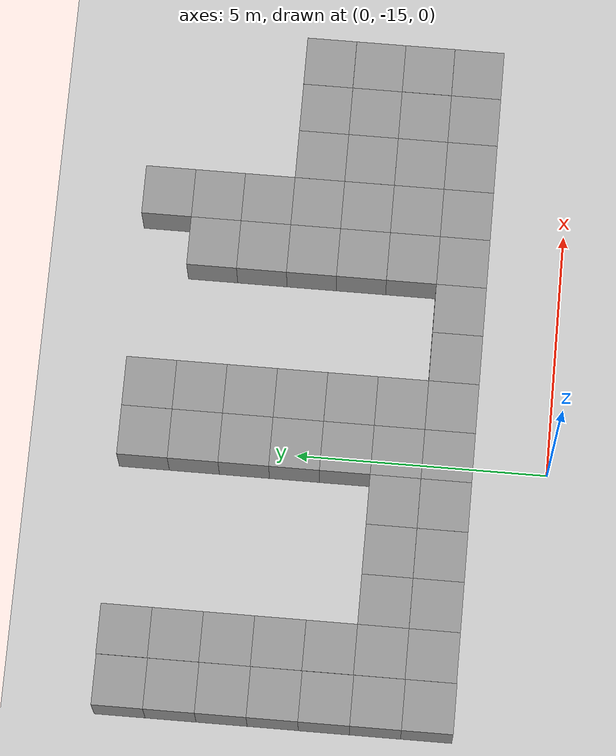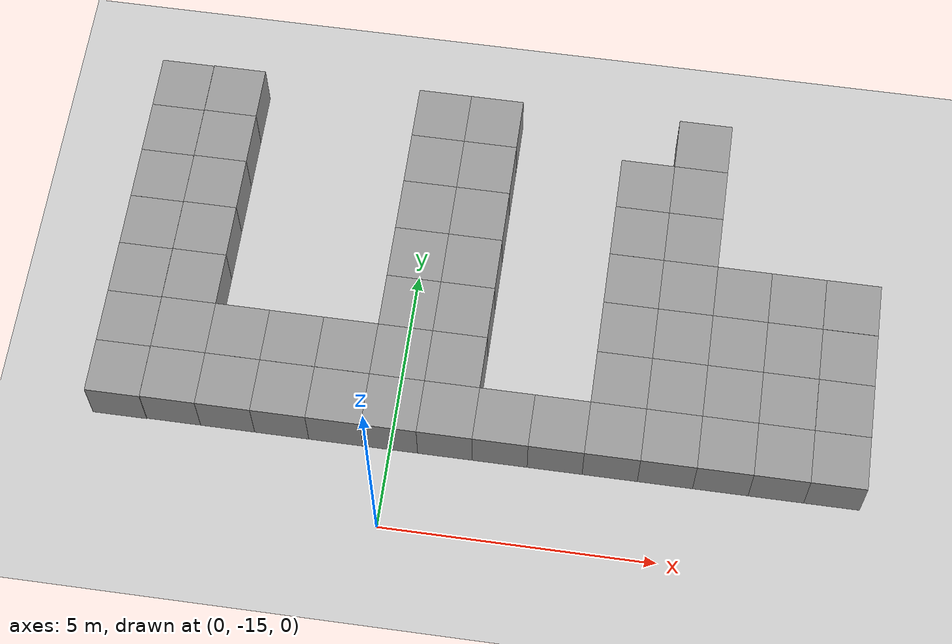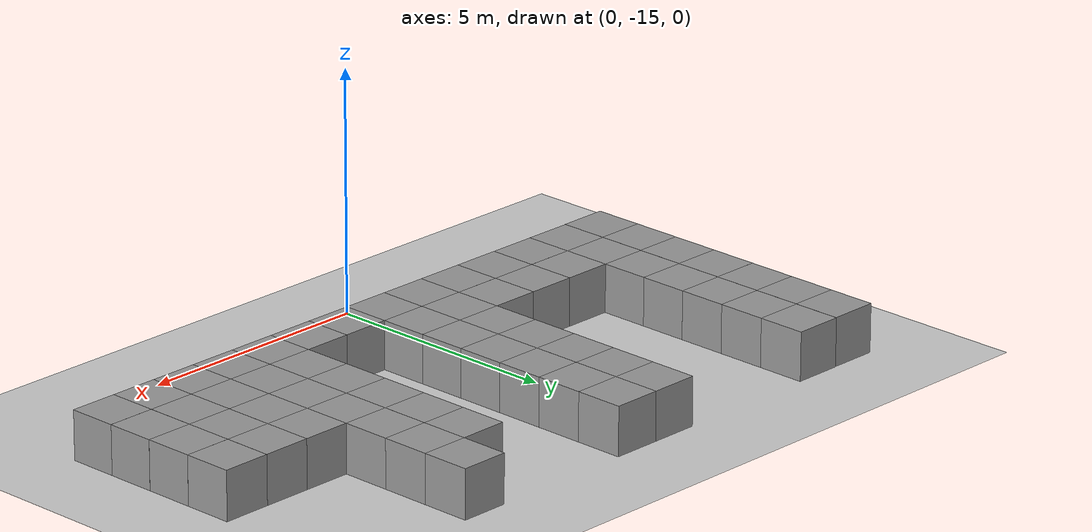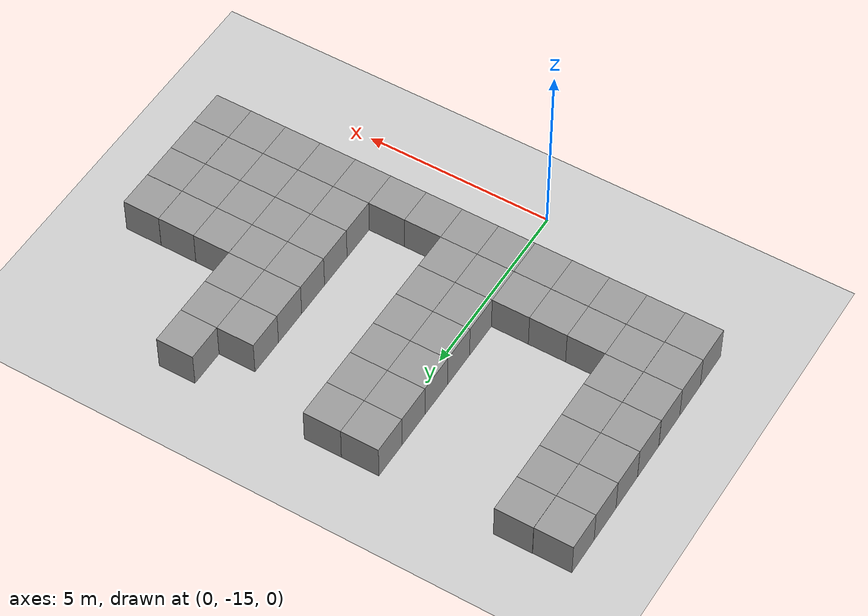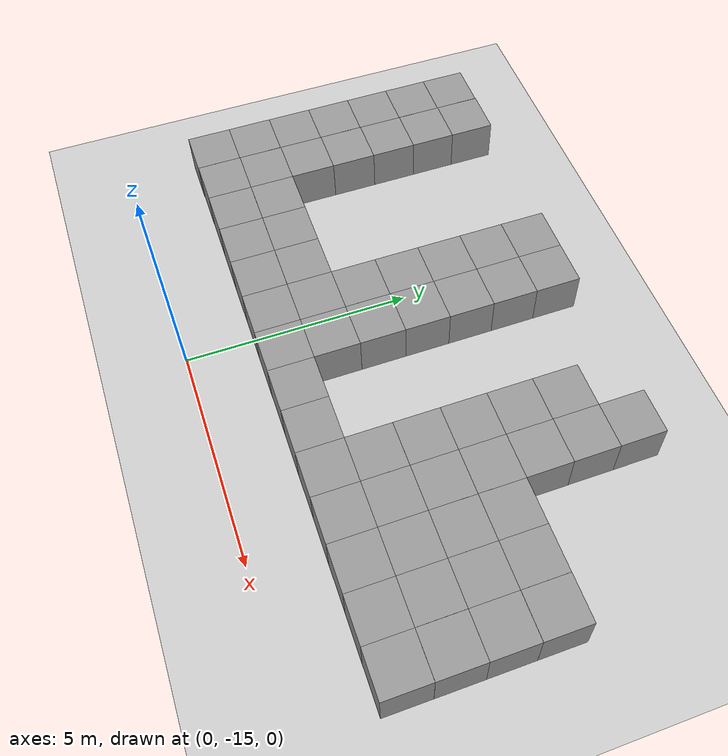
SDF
<sdf version="1.4">
 <world name="default">
  <model name="ground_plane">
   <static>true</static>
   <link name="link">
    <collision name="collision">
     <geometry><plane><normal>0 0 1</normal><size>100 100</size></plane></geometry>
     <surface><friction><ode><mu>100</mu><mu2>50</mu2></ode></friction></surface>
    </collision>
    <visual name="visual">
     <cast_shadows>0</cast_shadows>
     <geometry><plane><normal>0 0 1</normal><size>100 100</size></plane></geometry>
     <material>
      <script><uri>file://media/materials/scripts/gazebo.material</uri><name>Gazebo/Grey</name></script>
     </material>
    </visual>
    <velocity_decay><linear>0</linear><angular>0</angular></velocity_decay>
   </link>
  </model>
  <model name="unit_box_251">
   <pose>-4.00002 -13 0.5 1.61559e-27 -1e-06 -1.2e-05</pose>
   <static>true</static>
   <link name="link">
    <inertial>
     <mass>1</mass>
     <inertia><ixx>1</ixx><ixy>0</ixy><ixz>0</ixz><iyy>1</iyy><iyz>0</iyz><izz>1</izz></inertia>
    </inertial>
    <collision name="collision"><geometry><box><size>1 1 1</size></box></geometry></collision>
    <visual name="visual">
     <geometry><box><size>1 1 1</size></box></geometry>
     <material>
      <script><uri>file://media/materials/scripts/gazebo.material</uri><name>Gazebo/Grey</name></script>
     </material>
    </visual>
    <velocity_decay><linear>0</linear><angular>0</angular></velocity_decay>
   </link>
   <static>true</static>
  </model>
  <model name="unit_box_252">
   <pose>-3.00002 -13 0.5 0 0 -1.1e-05</pose>
   <static>true</static>
   <link name="link">
    <inertial>
     <mass>1</mass>
     <inertia><ixx>1</ixx><ixy>0</ixy><ixz>0</ixz><iyy>1</iyy><iyz>0</iyz><izz>1</izz></inertia>
    </inertial>
    <collision name="collision"><geometry><box><size>1 1 1</size></box></geometry></collision>
    <visual name="visual">
     <geometry><box><size>1 1 1</size></box></geometry>
     <material>
      <script><uri>file://media/materials/scripts/gazebo.material</uri><name>Gazebo/Grey</name></script>
     </material>
    </visual>
    <velocity_decay><linear>0</linear><angular>0</angular></velocity_decay>
   </link>
   <static>true</static>
  </model>
  <model name="unit_box_253">
   <pose>-2.00001 -13 0.5 0 0 -1e-05</pose>
   <static>true</static>
   <link name="link">
    <inertial>
     <mass>1</mass>
     <inertia><ixx>1</ixx><ixy>0</ixy><ixz>0</ixz><iyy>1</iyy><iyz>0</iyz><izz>1</izz></inertia>
    </inertial>
    <collision name="collision"><geometry><box><size>1 1 1</size></box></geometry></collision>
    <visual name="visual">
     <geometry><box><size>1 1 1</size></box></geometry>
     <material>
      <script><uri>file://media/materials/scripts/gazebo.material</uri><name>Gazebo/Grey</name></script>
     </material>
    </visual>
    <velocity_decay><linear>0</linear><angular>0</angular></velocity_decay>
   </link>
   <static>true</static>
  </model>
  <model name="unit_box_254">
   <pose>-1.00001 -13 0.5 0 0 -1e-05</pose>
   <static>true</static>
   <link name="link">
    <inertial>
     <mass>1</mass>
     <inertia><ixx>1</ixx><ixy>0</ixy><ixz>0</ixz><iyy>1</iyy><iyz>0</iyz><izz>1</izz></inertia>
    </inertial>
    <collision name="collision"><geometry><box><size>1 1 1</size></box></geometry></collision>
    <visual name="visual">
     <geometry><box><size>1 1 1</size></box></geometry>
     <material>
      <script><uri>file://media/materials/scripts/gazebo.material</uri><name>Gazebo/Grey</name></script>
     </material>
    </visual>
    <velocity_decay><linear>0</linear><angular>0</angular></velocity_decay>
   </link>
   <static>true</static>
  </model>
  <model name="unit_box_255">
   <pose>-1.2e-05 -12.9999 0.5 0 0 -8e-06</pose>
   <static>true</static>
   <link name="link">
    <inertial>
     <mass>1</mass>
     <inertia><ixx>1</ixx><ixy>0</ixy><ixz>0</ixz><iyy>1</iyy><iyz>0</iyz><izz>1</izz></inertia>
    </inertial>
    <collision name="collision"><geometry><box><size>1 1 1</size></box></geometry></collision>
    <visual name="visual">
     <geometry><box><size>1 1 1</size></box></geometry>
     <material>
      <script><uri>file://media/materials/scripts/gazebo.material</uri><name>Gazebo/Grey</name></script>
     </material>
    </visual>
    <velocity_decay><linear>0</linear><angular>0</angular></velocity_decay>
   </link>
   <static>true</static>
  </model>
  <model name="unit_box_256">
   <pose>0.999991 -12.9999 0.5 0 0 -7e-06</pose>
   <static>true</static>
   <link name="link">
    <inertial>
     <mass>1</mass>
     <inertia><ixx>1</ixx><ixy>0</ixy><ixz>0</ixz><iyy>1</iyy><iyz>0</iyz><izz>1</izz></inertia>
    </inertial>
    <collision name="collision"><geometry><box><size>1 1 1</size></box></geometry></collision>
    <visual name="visual">
     <geometry><box><size>1 1 1</size></box></geometry>
     <material>
      <script><uri>file://media/materials/scripts/gazebo.material</uri><name>Gazebo/Grey</name></script>
     </material>
    </visual>
    <velocity_decay><linear>0</linear><angular>0</angular></velocity_decay>
   </link>
   <static>true</static>
  </model>
  <model name="unit_box_257">
   <pose>1.99999 -12.9999 0.5 0 0 -7e-06</pose>
   <static>true</static>
   <link name="link">
    <inertial>
     <mass>1</mass>
     <inertia><ixx>1</ixx><ixy>0</ixy><ixz>0</ixz><iyy>1</iyy><iyz>0</iyz><izz>1</izz></inertia>
    </inertial>
    <collision name="collision"><geometry><box><size>1 1 1</size></box></geometry></collision>
    <visual name="visual">
     <geometry><box><size>1 1 1</size></box></geometry>
     <material>
      <script><uri>file://media/materials/scripts/gazebo.material</uri><name>Gazebo/Grey</name></script>
     </material>
    </visual>
    <velocity_decay><linear>0</linear><angular>0</angular></velocity_decay>
   </link>
   <static>true</static>
  </model>
  <model name="unit_box_258">
   <pose>2.99999 -12.9999 0.5 0 0 -5e-06</pose>
   <static>true</static>
   <link name="link">
    <inertial>
     <mass>1</mass>
     <inertia><ixx>1</ixx><ixy>0</ixy><ixz>0</ixz><iyy>1</iyy><iyz>0</iyz><izz>1</izz></inertia>
    </inertial>
    <collision name="collision"><geometry><box><size>1 1 1</size></box></geometry></collision>
    <visual name="visual">
     <geometry><box><size>1 1 1</size></box></geometry>
     <material>
      <script><uri>file://media/materials/scripts/gazebo.material</uri><name>Gazebo/Grey</name></script>
     </material>
    </visual>
    <velocity_decay><linear>0</linear><angular>0</angular></velocity_decay>
   </link>
   <static>true</static>
  </model>
  <model name="unit_box_259">
   <pose>4 -13 0.5 0 0 -5e-06</pose>
   <static>true</static>
   <link name="link">
    <inertial>
     <mass>1</mass>
     <inertia><ixx>1</ixx><ixy>0</ixy><ixz>0</ixz><iyy>1</iyy><iyz>0</iyz><izz>1</izz></inertia>
    </inertial>
    <collision name="collision"><geometry><box><size>1 1 1</size></box></geometry></collision>
    <visual name="visual">
     <geometry><box><size>1 1 1</size></box></geometry>
     <material>
      <script><uri>file://media/materials/scripts/gazebo.material</uri><name>Gazebo/Grey</name></script>
     </material>
    </visual>
    <velocity_decay><linear>0</linear><angular>0</angular></velocity_decay>
   </link>
   <static>true</static>
  </model>
  <model name="unit_box_260">
   <pose>5 -12.9999 0.499989 -3e-06 -0 -7e-06</pose>
   <static>true</static>
   <link name="link">
    <inertial>
     <mass>1</mass>
     <inertia><ixx>1</ixx><ixy>0</ixy><ixz>0</ixz><iyy>1</iyy><iyz>0</iyz><izz>1</izz></inertia>
    </inertial>
    <collision name="collision"><geometry><box><size>1 1 1</size></box></geometry></collision>
    <visual name="visual">
     <geometry><box><size>1 1 1</size></box></geometry>
     <material>
      <script><uri>file://media/materials/scripts/gazebo.material</uri><name>Gazebo/Grey</name></script>
     </material>
    </visual>
    <velocity_decay><linear>0</linear><angular>0</angular></velocity_decay>
   </link>
   <static>true</static>
  </model>
  <model name="unit_box_261">
   <pose>6 -13 0.500001 2e-06 3.23117e-27 -7e-06</pose>
   <static>true</static>
   <link name="link">
    <inertial>
     <mass>1</mass>
     <inertia><ixx>1</ixx><ixy>0</ixy><ixz>0</ixz><iyy>1</iyy><iyz>0</iyz><izz>1</izz></inertia>
    </inertial>
    <collision name="collision"><geometry><box><size>1 1 1</size></box></geometry></collision>
    <visual name="visual">
     <geometry><box><size>1 1 1</size></box></geometry>
     <material>
      <script><uri>file://media/materials/scripts/gazebo.material</uri><name>Gazebo/Grey</name></script>
     </material>
    </visual>
    <velocity_decay><linear>0</linear><angular>0</angular></velocity_decay>
   </link>
   <static>true</static>
  </model>
  <model name="unit_box_262">
   <pose>7 -13 0.5 0 0 -1.1e-05</pose>
   <static>true</static>
   <link name="link">
    <inertial>
     <mass>1</mass>
     <inertia><ixx>1</ixx><ixy>0</ixy><ixz>0</ixz><iyy>1</iyy><iyz>0</iyz><izz>1</izz></inertia>
    </inertial>
    <collision name="collision"><geometry><box><size>1 1 1</size></box></geometry></collision>
    <visual name="visual">
     <geometry><box><size>1 1 1</size></box></geometry>
     <material>
      <script><uri>file://media/materials/scripts/gazebo.material</uri><name>Gazebo/Grey</name></script>
     </material>
    </visual>
    <velocity_decay><linear>0</linear><angular>0</angular></velocity_decay>
   </link>
   <static>true</static>
  </model>
  <model name="unit_box_263">
   <pose>8 -13 0.499998 3e-06 -0 -1.1e-05</pose>
   <static>true</static>
   <link name="link">
    <inertial>
     <mass>1</mass>
     <inertia><ixx>1</ixx><ixy>0</ixy><ixz>0</ixz><iyy>1</iyy><iyz>0</iyz><izz>1</izz></inertia>
    </inertial>
    <collision name="collision"><geometry><box><size>1 1 1</size></box></geometry></collision>
    <visual name="visual">
     <geometry><box><size>1 1 1</size></box></geometry>
     <material>
      <script><uri>file://media/materials/scripts/gazebo.material</uri><name>Gazebo/Grey</name></script>
     </material>
    </visual>
    <velocity_decay><linear>0</linear><angular>0</angular></velocity_decay>
   </link>
   <static>true</static>
  </model>
  <model name="unit_box_3_0">
   <pose>-5.00136 -7.00916 0.5 0 -0 0.000356</pose>
   <link name="link">
    <inertial>
     <mass>1</mass>
     <inertia><ixx>1</ixx><ixy>0</ixy><ixz>0</ixz><iyy>1</iyy><iyz>0</iyz><izz>1</izz></inertia>
    </inertial>
    <collision name="collision"><geometry><box><size>1 1 1</size></box></geometry></collision>
    <visual name="visual">
     <geometry><box><size>1 1 1</size></box></geometry>
     <material>
      <script><uri>file://media/materials/scripts/gazebo.material</uri><name>Gazebo/Grey</name></script>
     </material>
    </visual>
    <velocity_decay><linear>0</linear><angular>0</angular></velocity_decay>
   </link>
   <static>true</static>
  </model>
  <model name="unit_box_4_0">
   <pose>-5.00078 -8.00916 0.5 0 -0 0.000358</pose>
   <link name="link">
    <inertial>
     <mass>1</mass>
     <inertia><ixx>1</ixx><ixy>0</ixy><ixz>0</ixz><iyy>1</iyy><iyz>0</iyz><izz>1</izz></inertia>
    </inertial>
    <collision name="collision"><geometry><box><size>1 1 1</size></box></geometry></collision>
    <visual name="visual">
     <geometry><box><size>1 1 1</size></box></geometry>
     <material>
      <script><uri>file://media/materials/scripts/gazebo.material</uri><name>Gazebo/Grey</name></script>
     </material>
    </visual>
    <velocity_decay><linear>0</linear><angular>0</angular></velocity_decay>
   </link>
   <static>true</static>
  </model>
  <model name="unit_box_5_0">
   <pose>-5.00004 -9.00916 0.5 0 -0 0.000358</pose>
   <link name="link">
    <inertial>
     <mass>1</mass>
     <inertia><ixx>1</ixx><ixy>0</ixy><ixz>0</ixz><iyy>1</iyy><iyz>0</iyz><izz>1</izz></inertia>
    </inertial>
    <collision name="collision"><geometry><box><size>1 1 1</size></box></geometry></collision>
    <visual name="visual">
     <geometry><box><size>1 1 1</size></box></geometry>
     <material>
      <script><uri>file://media/materials/scripts/gazebo.material</uri><name>Gazebo/Grey</name></script>
     </material>
    </visual>
    <velocity_decay><linear>0</linear><angular>0</angular></velocity_decay>
   </link>
   <static>true</static>
  </model>
  <model name="unit_box_6_0">
   <pose>-5.00024 -10.0092 0.5 0 -0 0.000433</pose>
   <link name="link">
    <inertial>
     <mass>1</mass>
     <inertia><ixx>1</ixx><ixy>0</ixy><ixz>0</ixz><iyy>1</iyy><iyz>0</iyz><izz>1</izz></inertia>
    </inertial>
    <collision name="collision"><geometry><box><size>1 1 1</size></box></geometry></collision>
    <visual name="visual">
     <geometry><box><size>1 1 1</size></box></geometry>
     <material>
      <script><uri>file://media/materials/scripts/gazebo.material</uri><name>Gazebo/Grey</name></script>
     </material>
    </visual>
    <velocity_decay><linear>0</linear><angular>0</angular></velocity_decay>
   </link>
   <static>true</static>
  </model>
  <model name="unit_box_7_0">
   <pose>-5.00172 -11.0092 0.5 0 -0 0.000435</pose>
   <link name="link">
    <inertial>
     <mass>1</mass>
     <inertia><ixx>1</ixx><ixy>0</ixy><ixz>0</ixz><iyy>1</iyy><iyz>0</iyz><izz>1</izz></inertia>
    </inertial>
    <collision name="collision"><geometry><box><size>1 1 1</size></box></geometry></collision>
    <visual name="visual">
     <geometry><box><size>1 1 1</size></box></geometry>
     <material>
      <script><uri>file://media/materials/scripts/gazebo.material</uri><name>Gazebo/Grey</name></script>
     </material>
    </visual>
    <velocity_decay><linear>0</linear><angular>0</angular></velocity_decay>
   </link>
   <static>true</static>
  </model>
  <model name="unit_box_8_0">
   <pose>-5.00096 -12.0092 0.5 0 -0 0.000437</pose>
   <link name="link">
    <inertial>
     <mass>1</mass>
     <inertia><ixx>1</ixx><ixy>0</ixy><ixz>0</ixz><iyy>1</iyy><iyz>0</iyz><izz>1</izz></inertia>
    </inertial>
    <collision name="collision"><geometry><box><size>1 1 1</size></box></geometry></collision>
    <visual name="visual">
     <geometry><box><size>1 1 1</size></box></geometry>
     <material>
      <script><uri>file://media/materials/scripts/gazebo.material</uri><name>Gazebo/Grey</name></script>
     </material>
    </visual>
    <velocity_decay><linear>0</linear><angular>0</angular></velocity_decay>
   </link>
   <static>true</static>
  </model>
  <model name="unit_box_9_0">
   <pose>-5.00026 -13.0092 0.5 0 -0 0.00045</pose>
   <link name="link">
    <inertial>
     <mass>1</mass>
     <inertia><ixx>1</ixx><ixy>0</ixy><ixz>0</ixz><iyy>1</iyy><iyz>0</iyz><izz>1</izz></inertia>
    </inertial>
    <collision name="collision"><geometry><box><size>1 1 1</size></box></geometry></collision>
    <visual name="visual">
     <geometry><box><size>1 1 1</size></box></geometry>
     <material>
      <script><uri>file://media/materials/scripts/gazebo.material</uri><name>Gazebo/Grey</name></script>
     </material>
    </visual>
    <velocity_decay><linear>0</linear><angular>0</angular></velocity_decay>
   </link>
   <static>true</static>
  </model>
  <model name="unit_box_29_0">
   <pose>-4.00004 -12 0.5 0 -0 -4.6e-05</pose>
   <link name="link">
    <inertial>
     <mass>1</mass>
     <inertia><ixx>1</ixx><ixy>0</ixy><ixz>0</ixz><iyy>1</iyy><iyz>0</iyz><izz>1</izz></inertia>
    </inertial>
    <collision name="collision"><geometry><box><size>1 1 1</size></box></geometry></collision>
    <visual name="visual">
     <geometry><box><size>1 1 1</size></box></geometry>
     <material>
      <script><uri>file://media/materials/scripts/gazebo.material</uri><name>Gazebo/Grey</name></script>
     </material>
    </visual>
    <velocity_decay><linear>0</linear><angular>0</angular></velocity_decay>
   </link>
   <static>true</static>
  </model>
  <model name="unit_box_30_0">
   <pose>-3.00003 -11.9996 0.5 0 -0 -3.6e-05</pose>
   <link name="link">
    <inertial>
     <mass>1</mass>
     <inertia><ixx>1</ixx><ixy>0</ixy><ixz>0</ixz><iyy>1</iyy><iyz>0</iyz><izz>1</izz></inertia>
    </inertial>
    <collision name="collision"><geometry><box><size>1 1 1</size></box></geometry></collision>
    <visual name="visual">
     <geometry><box><size>1 1 1</size></box></geometry>
     <material>
      <script><uri>file://media/materials/scripts/gazebo.material</uri><name>Gazebo/Grey</name></script>
     </material>
    </visual>
    <velocity_decay><linear>0</linear><angular>0</angular></velocity_decay>
   </link>
   <static>true</static>
  </model>
  <model name="unit_box_31_0">
   <pose>-2.00003 -11.9996 0.5 0 0 -3.2e-05</pose>
   <link name="link">
    <inertial>
     <mass>1</mass>
     <inertia><ixx>1</ixx><ixy>0</ixy><ixz>0</ixz><iyy>1</iyy><iyz>0</iyz><izz>1</izz></inertia>
    </inertial>
    <collision name="collision"><geometry><box><size>1 1 1</size></box></geometry></collision>
    <visual name="visual">
     <geometry><box><size>1 1 1</size></box></geometry>
     <material>
      <script><uri>file://media/materials/scripts/gazebo.material</uri><name>Gazebo/Grey</name></script>
     </material>
    </visual>
    <velocity_decay><linear>0</linear><angular>0</angular></velocity_decay>
   </link>
   <static>true</static>
  </model>
  <model name="unit_box_32_0">
   <pose>-1.00003 -11.9996 0.5 0 0 -2.6e-05</pose>
   <link name="link">
    <inertial>
     <mass>1</mass>
     <inertia><ixx>1</ixx><ixy>0</ixy><ixz>0</ixz><iyy>1</iyy><iyz>0</iyz><izz>1</izz></inertia>
    </inertial>
    <collision name="collision"><geometry><box><size>1 1 1</size></box></geometry></collision>
    <visual name="visual">
     <geometry><box><size>1 1 1</size></box></geometry>
     <material>
      <script><uri>file://media/materials/scripts/gazebo.material</uri><name>Gazebo/Grey</name></script>
     </material>
    </visual>
    <velocity_decay><linear>0</linear><angular>0</angular></velocity_decay>
   </link>
   <static>true</static>
  </model>
  <model name="unit_box_33_0">
   <pose>-5e-06 -11.9999 0.5 -0 -0 -8e-06</pose>
   <link name="link">
    <inertial>
     <mass>1</mass>
     <inertia><ixx>1</ixx><ixy>0</ixy><ixz>0</ixz><iyy>1</iyy><iyz>0</iyz><izz>1</izz></inertia>
    </inertial>
    <collision name="collision"><geometry><box><size>1 1 1</size></box></geometry></collision>
    <visual name="visual">
     <geometry><box><size>1 1 1</size></box></geometry>
     <material>
      <script><uri>file://media/materials/scripts/gazebo.material</uri><name>Gazebo/Grey</name></script>
     </material>
    </visual>
    <velocity_decay><linear>0</linear><angular>0</angular></velocity_decay>
   </link>
   <static>true</static>
  </model>
  <model name="unit_box_34_0">
   <pose>0.999998 -11.9999 0.5 0 -0 -8e-06</pose>
   <link name="link">
    <inertial>
     <mass>1</mass>
     <inertia><ixx>1</ixx><ixy>0</ixy><ixz>0</ixz><iyy>1</iyy><iyz>0</iyz><izz>1</izz></inertia>
    </inertial>
    <collision name="collision"><geometry><box><size>1 1 1</size></box></geometry></collision>
    <visual name="visual">
     <geometry><box><size>1 1 1</size></box></geometry>
     <material>
      <script><uri>file://media/materials/scripts/gazebo.material</uri><name>Gazebo/Grey</name></script>
     </material>
    </visual>
    <velocity_decay><linear>0</linear><angular>0</angular></velocity_decay>
   </link>
   <static>true</static>
  </model>
  <model name="unit_box_35_0">
   <pose>3.99999 -12 0.5 0 -0 7e-06</pose>
   <link name="link">
    <inertial>
     <mass>1</mass>
     <inertia><ixx>1</ixx><ixy>0</ixy><ixz>0</ixz><iyy>1</iyy><iyz>0</iyz><izz>1</izz></inertia>
    </inertial>
    <collision name="collision"><geometry><box><size>1 1 1</size></box></geometry></collision>
    <visual name="visual">
     <geometry><box><size>1 1 1</size></box></geometry>
     <material>
      <script><uri>file://media/materials/scripts/gazebo.material</uri><name>Gazebo/Grey</name></script>
     </material>
    </visual>
    <velocity_decay><linear>0</linear><angular>0</angular></velocity_decay>
   </link>
   <static>true</static>
  </model>
  <model name="unit_box_36_0">
   <pose>5 -11.9999 0.5 0 0 -7e-06</pose>
   <link name="link">
    <inertial>
     <mass>1</mass>
     <inertia><ixx>1</ixx><ixy>0</ixy><ixz>0</ixz><iyy>1</iyy><iyz>0</iyz><izz>1</izz></inertia>
    </inertial>
    <collision name="collision"><geometry><box><size>1 1 1</size></box></geometry></collision>
    <visual name="visual">
     <geometry><box><size>1 1 1</size></box></geometry>
     <material>
      <script><uri>file://media/materials/scripts/gazebo.material</uri><name>Gazebo/Grey</name></script>
     </material>
    </visual>
    <velocity_decay><linear>0</linear><angular>0</angular></velocity_decay>
   </link>
   <static>true</static>
  </model>
  <model name="unit_box_37_0">
   <pose>6.00003 -12 0.5 -0 -0 -3e-05</pose>
   <link name="link">
    <inertial>
     <mass>1</mass>
     <inertia><ixx>1</ixx><ixy>0</ixy><ixz>0</ixz><iyy>1</iyy><iyz>0</iyz><izz>1</izz></inertia>
    </inertial>
    <collision name="collision"><geometry><box><size>1 1 1</size></box></geometry></collision>
    <visual name="visual">
     <geometry><box><size>1 1 1</size></box></geometry>
     <material>
      <script><uri>file://media/materials/scripts/gazebo.material</uri><name>Gazebo/Grey</name></script>
     </material>
    </visual>
    <velocity_decay><linear>0</linear><angular>0</angular></velocity_decay>
   </link>
   <static>true</static>
  </model>
  <model name="unit_box_38_0">
   <pose>7.00003 -12 0.5 0 0 -3e-05</pose>
   <link name="link">
    <inertial>
     <mass>1</mass>
     <inertia><ixx>1</ixx><ixy>0</ixy><ixz>0</ixz><iyy>1</iyy><iyz>0</iyz><izz>1</izz></inertia>
    </inertial>
    <collision name="collision"><geometry><box><size>1 1 1</size></box></geometry></collision>
    <visual name="visual">
     <geometry><box><size>1 1 1</size></box></geometry>
     <material>
      <script><uri>file://media/materials/scripts/gazebo.material</uri><name>Gazebo/Grey</name></script>
     </material>
    </visual>
    <velocity_decay><linear>0</linear><angular>0</angular></velocity_decay>
   </link>
   <static>true</static>
  </model>
  <model name="unit_box_39_0">
   <pose>8.00115 -11.9995 0.5 0 -0 0.000206</pose>
   <link name="link">
    <inertial>
     <mass>1</mass>
     <inertia><ixx>1</ixx><ixy>0</ixy><ixz>0</ixz><iyy>1</iyy><iyz>0</iyz><izz>1</izz></inertia>
    </inertial>
    <collision name="collision"><geometry><box><size>1 1 1</size></box></geometry></collision>
    <visual name="visual">
     <geometry><box><size>1 1 1</size></box></geometry>
     <material>
      <script><uri>file://media/materials/scripts/gazebo.material</uri><name>Gazebo/Grey</name></script>
     </material>
    </visual>
    <velocity_decay><linear>0</linear><angular>0</angular></velocity_decay>
   </link>
   <static>true</static>
  </model>
  <model name="unit_box_44_0">
   <pose>-3.99998 -11 0.5 0 0 -7.9e-05</pose>
   <link name="link">
    <inertial>
     <mass>1</mass>
     <inertia><ixx>1</ixx><ixy>0</ixy><ixz>0</ixz><iyy>1</iyy><iyz>0</iyz><izz>1</izz></inertia>
    </inertial>
    <collision name="collision"><geometry><box><size>1 1 1</size></box></geometry></collision>
    <visual name="visual">
     <geometry><box><size>1 1 1</size></box></geometry>
     <material>
      <script><uri>file://media/materials/scripts/gazebo.material</uri><name>Gazebo/Grey</name></script>
     </material>
    </visual>
    <velocity_decay><linear>0</linear><angular>0</angular></velocity_decay>
   </link>
   <static>true</static>
  </model>
  <model name="unit_box_45_0">
   <pose>-3.99957 -9.99996 0.5 -0 -0 -7.8e-05</pose>
   <link name="link">
    <inertial>
     <mass>1</mass>
     <inertia><ixx>1</ixx><ixy>0</ixy><ixz>0</ixz><iyy>1</iyy><iyz>0</iyz><izz>1</izz></inertia>
    </inertial>
    <collision name="collision"><geometry><box><size>1 1 1</size></box></geometry></collision>
    <visual name="visual">
     <geometry><box><size>1 1 1</size></box></geometry>
     <material>
      <script><uri>file://media/materials/scripts/gazebo.material</uri><name>Gazebo/Grey</name></script>
     </material>
    </visual>
    <velocity_decay><linear>0</linear><angular>0</angular></velocity_decay>
   </link>
   <static>true</static>
  </model>
  <model name="unit_box_46_0">
   <pose>-3.99972 -8.99996 0.5 0 -0 -7.9e-05</pose>
   <link name="link">
    <inertial>
     <mass>1</mass>
     <inertia><ixx>1</ixx><ixy>0</ixy><ixz>0</ixz><iyy>1</iyy><iyz>0</iyz><izz>1</izz></inertia>
    </inertial>
    <collision name="collision"><geometry><box><size>1 1 1</size></box></geometry></collision>
    <visual name="visual">
     <geometry><box><size>1 1 1</size></box></geometry>
     <material>
      <script><uri>file://media/materials/scripts/gazebo.material</uri><name>Gazebo/Grey</name></script>
     </material>
    </visual>
    <velocity_decay><linear>0</linear><angular>0</angular></velocity_decay>
   </link>
   <static>true</static>
  </model>
  <model name="unit_box_47_0">
   <pose>-3.99969 -7.99996 0.5 -0 -0 -7.9e-05</pose>
   <link name="link">
    <inertial>
     <mass>1</mass>
     <inertia><ixx>1</ixx><ixy>0</ixy><ixz>0</ixz><iyy>1</iyy><iyz>0</iyz><izz>1</izz></inertia>
    </inertial>
    <collision name="collision"><geometry><box><size>1 1 1</size></box></geometry></collision>
    <visual name="visual">
     <geometry><box><size>1 1 1</size></box></geometry>
     <material>
      <script><uri>file://media/materials/scripts/gazebo.material</uri><name>Gazebo/Grey</name></script>
     </material>
    </visual>
    <velocity_decay><linear>0</linear><angular>0</angular></velocity_decay>
   </link>
   <static>true</static>
  </model>
  <model name="unit_box_48_0">
   <pose>-3.99926 -6.99996 0.5 0 0 -7.9e-05</pose>
   <link name="link">
    <inertial>
     <mass>1</mass>
     <inertia><ixx>1</ixx><ixy>0</ixy><ixz>0</ixz><iyy>1</iyy><iyz>0</iyz><izz>1</izz></inertia>
    </inertial>
    <collision name="collision"><geometry><box><size>1 1 1</size></box></geometry></collision>
    <visual name="visual">
     <geometry><box><size>1 1 1</size></box></geometry>
     <material>
      <script><uri>file://media/materials/scripts/gazebo.material</uri><name>Gazebo/Grey</name></script>
     </material>
    </visual>
    <velocity_decay><linear>0</linear><angular>0</angular></velocity_decay>
   </link>
   <static>true</static>
  </model>
  <model name="unit_box_52_0">
   <pose>1.00001 -10.9999 0.5 0 0 -9e-06</pose>
   <link name="link">
    <inertial>
     <mass>1</mass>
     <inertia><ixx>1</ixx><ixy>0</ixy><ixz>0</ixz><iyy>1</iyy><iyz>0</iyz><izz>1</izz></inertia>
    </inertial>
    <collision name="collision"><geometry><box><size>1 1 1</size></box></geometry></collision>
    <visual name="visual">
     <geometry><box><size>1 1 1</size></box></geometry>
     <material>
      <script><uri>file://media/materials/scripts/gazebo.material</uri><name>Gazebo/Grey</name></script>
     </material>
    </visual>
    <velocity_decay><linear>0</linear><angular>0</angular></velocity_decay>
   </link>
   <static>true</static>
  </model>
  <model name="unit_box_53_0">
   <pose>0.999998 -9.99989 0.5 0 0 -8e-06</pose>
   <link name="link">
    <inertial>
     <mass>1</mass>
     <inertia><ixx>1</ixx><ixy>0</ixy><ixz>0</ixz><iyy>1</iyy><iyz>0</iyz><izz>1</izz></inertia>
    </inertial>
    <collision name="collision"><geometry><box><size>1 1 1</size></box></geometry></collision>
    <visual name="visual">
     <geometry><box><size>1 1 1</size></box></geometry>
     <material>
      <script><uri>file://media/materials/scripts/gazebo.material</uri><name>Gazebo/Grey</name></script>
     </material>
    </visual>
    <velocity_decay><linear>0</linear><angular>0</angular></velocity_decay>
   </link>
   <static>true</static>
  </model>
  <model name="unit_box_54_0">
   <pose>1.00002 -8.99989 0.5 0 0 -8e-06</pose>
   <link name="link">
    <inertial>
     <mass>1</mass>
     <inertia><ixx>1</ixx><ixy>0</ixy><ixz>0</ixz><iyy>1</iyy><iyz>0</iyz><izz>1</izz></inertia>
    </inertial>
    <collision name="collision"><geometry><box><size>1 1 1</size></box></geometry></collision>
    <visual name="visual">
     <geometry><box><size>1 1 1</size></box></geometry>
     <material>
      <script><uri>file://media/materials/scripts/gazebo.material</uri><name>Gazebo/Grey</name></script>
     </material>
    </visual>
    <velocity_decay><linear>0</linear><angular>0</angular></velocity_decay>
   </link>
   <static>true</static>
  </model>
  <model name="unit_box_55_0">
   <pose>1 -7.99989 0.5 -0 -0 -8e-06</pose>
   <link name="link">
    <inertial>
     <mass>1</mass>
     <inertia><ixx>1</ixx><ixy>0</ixy><ixz>0</ixz><iyy>1</iyy><iyz>0</iyz><izz>1</izz></inertia>
    </inertial>
    <collision name="collision"><geometry><box><size>1 1 1</size></box></geometry></collision>
    <visual name="visual">
     <geometry><box><size>1 1 1</size></box></geometry>
     <material>
      <script><uri>file://media/materials/scripts/gazebo.material</uri><name>Gazebo/Grey</name></script>
     </material>
    </visual>
    <velocity_decay><linear>0</linear><angular>0</angular></velocity_decay>
   </link>
   <static>true</static>
  </model>
  <model name="unit_box_56_0">
   <pose>1.00001 -6.99989 0.5 0 -0 -7e-06</pose>
   <link name="link">
    <inertial>
     <mass>1</mass>
     <inertia><ixx>1</ixx><ixy>0</ixy><ixz>0</ixz><iyy>1</iyy><iyz>0</iyz><izz>1</izz></inertia>
    </inertial>
    <collision name="collision"><geometry><box><size>1 1 1</size></box></geometry></collision>
    <visual name="visual">
     <geometry><box><size>1 1 1</size></box></geometry>
     <material>
      <script><uri>file://media/materials/scripts/gazebo.material</uri><name>Gazebo/Grey</name></script>
     </material>
    </visual>
    <velocity_decay><linear>0</linear><angular>0</angular></velocity_decay>
   </link>
   <static>true</static>
  </model>
  <model name="unit_box_127_0">
   <pose>3.99986 -10.9999 0.5 0 0 -3.3e-05</pose>
   <link name="link">
    <inertial>
     <mass>1</mass>
     <inertia><ixx>1</ixx><ixy>0</ixy><ixz>0</ixz><iyy>1</iyy><iyz>0</iyz><izz>1</izz></inertia>
    </inertial>
    <collision name="collision"><geometry><box><size>1 1 1</size></box></geometry></collision>
    <visual name="visual">
     <geometry><box><size>1 1 1</size></box></geometry>
     <material>
      <script><uri>file://media/materials/scripts/gazebo.material</uri><name>Gazebo/Grey</name></script>
     </material>
    </visual>
    <velocity_decay><linear>0</linear><angular>0</angular></velocity_decay>
   </link>
   <static>true</static>
  </model>
  <model name="unit_box_128_0">
   <pose>3.99949 -9.99989 0.5 0 0 -6e-06</pose>
   <link name="link">
    <inertial>
     <mass>1</mass>
     <inertia><ixx>1</ixx><ixy>0</ixy><ixz>0</ixz><iyy>1</iyy><iyz>0</iyz><izz>1</izz></inertia>
    </inertial>
    <collision name="collision"><geometry><box><size>1 1 1</size></box></geometry></collision>
    <visual name="visual">
     <geometry><box><size>1 1 1</size></box></geometry>
     <material>
      <script><uri>file://media/materials/scripts/gazebo.material</uri><name>Gazebo/Grey</name></script>
     </material>
    </visual>
    <velocity_decay><linear>0</linear><angular>0</angular></velocity_decay>
   </link>
   <static>true</static>
  </model>
  <model name="unit_box_129_0">
   <pose>3.99992 -8.99986 0.5 0 -0 0</pose>
   <link name="link">
    <inertial>
     <mass>1</mass>
     <inertia><ixx>1</ixx><ixy>0</ixy><ixz>0</ixz><iyy>1</iyy><iyz>0</iyz><izz>1</izz></inertia>
    </inertial>
    <collision name="collision"><geometry><box><size>1 1 1</size></box></geometry></collision>
    <visual name="visual">
     <geometry><box><size>1 1 1</size></box></geometry>
     <material>
      <script><uri>file://media/materials/scripts/gazebo.material</uri><name>Gazebo/Grey</name></script>
     </material>
    </visual>
    <velocity_decay><linear>0</linear><angular>0</angular></velocity_decay>
   </link>
   <static>true</static>
  </model>
  <model name="unit_box_130_0">
   <pose>4 -7.99986 0.5 0 -0 1e-06</pose>
   <link name="link">
    <inertial>
     <mass>1</mass>
     <inertia><ixx>1</ixx><ixy>0</ixy><ixz>0</ixz><iyy>1</iyy><iyz>0</iyz><izz>1</izz></inertia>
    </inertial>
    <collision name="collision"><geometry><box><size>1 1 1</size></box></geometry></collision>
    <visual name="visual">
     <geometry><box><size>1 1 1</size></box></geometry>
     <material>
      <script><uri>file://media/materials/scripts/gazebo.material</uri><name>Gazebo/Grey</name></script>
     </material>
    </visual>
    <velocity_decay><linear>0</linear><angular>0</angular></velocity_decay>
   </link>
   <static>true</static>
  </model>
  <model name="unit_box_140_0">
   <pose>7.99985 -9.99836 0.5 -0 -0 -0.00014</pose>
   <link name="link">
    <inertial>
     <mass>1</mass>
     <inertia><ixx>1</ixx><ixy>0</ixy><ixz>0</ixz><iyy>1</iyy><iyz>0</iyz><izz>1</izz></inertia>
    </inertial>
    <collision name="collision"><geometry><box><size>1 1 1</size></box></geometry></collision>
    <visual name="visual">
     <geometry><box><size>1 1 1</size></box></geometry>
     <material>
      <script><uri>file://media/materials/scripts/gazebo.material</uri><name>Gazebo/Grey</name></script>
     </material>
    </visual>
    <velocity_decay><linear>0</linear><angular>0</angular></velocity_decay>
   </link>
   <static>true</static>
  </model>
  <model name="unit_box_141_0">
   <pose>6.99959 -9.99977 0.5 0 0 -6.6e-05</pose>
   <link name="link">
    <inertial>
     <mass>1</mass>
     <inertia><ixx>1</ixx><ixy>0</ixy><ixz>0</ixz><iyy>1</iyy><iyz>0</iyz><izz>1</izz></inertia>
    </inertial>
    <collision name="collision"><geometry><box><size>1 1 1</size></box></geometry></collision>
    <visual name="visual">
     <geometry><box><size>1 1 1</size></box></geometry>
     <material>
      <script><uri>file://media/materials/scripts/gazebo.material</uri><name>Gazebo/Grey</name></script>
     </material>
    </visual>
    <velocity_decay><linear>0</linear><angular>0</angular></velocity_decay>
   </link>
   <static>true</static>
  </model>
  <model name="unit_box_142_0">
   <pose>5.99957 -9.99993 0.5 0 0 -5.7e-05</pose>
   <link name="link">
    <inertial>
     <mass>1</mass>
     <inertia><ixx>1</ixx><ixy>0</ixy><ixz>0</ixz><iyy>1</iyy><iyz>0</iyz><izz>1</izz></inertia>
    </inertial>
    <collision name="collision"><geometry><box><size>1 1 1</size></box></geometry></collision>
    <visual name="visual">
     <geometry><box><size>1 1 1</size></box></geometry>
     <material>
      <script><uri>file://media/materials/scripts/gazebo.material</uri><name>Gazebo/Grey</name></script>
     </material>
    </visual>
    <velocity_decay><linear>0</linear><angular>0</angular></velocity_decay>
   </link>
   <static>true</static>
  </model>
  <model name="unit_box_146_0">
   <pose>8.00003 -10.9994 0.5 0 0 -7.7e-05</pose>
   <link name="link">
    <inertial>
     <mass>1</mass>
     <inertia><ixx>1</ixx><ixy>0</ixy><ixz>0</ixz><iyy>1</iyy><iyz>0</iyz><izz>1</izz></inertia>
    </inertial>
    <collision name="collision"><geometry><box><size>1 1 1</size></box></geometry></collision>
    <visual name="visual">
     <geometry><box><size>1 1 1</size></box></geometry>
     <material>
      <script><uri>file://media/materials/scripts/gazebo.material</uri><name>Gazebo/Grey</name></script>
     </material>
    </visual>
    <velocity_decay><linear>0</linear><angular>0</angular></velocity_decay>
   </link>
   <static>true</static>
  </model>
  <model name="unit_box_147_0">
   <pose>7.00003 -10.9999 0.5 0 0 -7.5e-05</pose>
   <link name="link">
    <inertial>
     <mass>1</mass>
     <inertia><ixx>1</ixx><ixy>0</ixy><ixz>0</ixz><iyy>1</iyy><iyz>0</iyz><izz>1</izz></inertia>
    </inertial>
    <collision name="collision"><geometry><box><size>1 1 1</size></box></geometry></collision>
    <visual name="visual">
     <geometry><box><size>1 1 1</size></box></geometry>
     <material>
      <script><uri>file://media/materials/scripts/gazebo.material</uri><name>Gazebo/Grey</name></script>
     </material>
    </visual>
    <velocity_decay><linear>0</linear><angular>0</angular></velocity_decay>
   </link>
   <static>true</static>
  </model>
  <model name="unit_box_148_0">
   <pose>6 -10.9999 0.5 0 0 -5.7e-05</pose>
   <link name="link">
    <inertial>
     <mass>1</mass>
     <inertia><ixx>1</ixx><ixy>0</ixy><ixz>0</ixz><iyy>1</iyy><iyz>0</iyz><izz>1</izz></inertia>
    </inertial>
    <collision name="collision"><geometry><box><size>1 1 1</size></box></geometry></collision>
    <visual name="visual">
     <geometry><box><size>1 1 1</size></box></geometry>
     <material>
      <script><uri>file://media/materials/scripts/gazebo.material</uri><name>Gazebo/Grey</name></script>
     </material>
    </visual>
    <velocity_decay><linear>0</linear><angular>0</angular></velocity_decay>
   </link>
   <static>true</static>
  </model>
  <model name="unit_box_149">
   <pose>4.99989 -10.9999 0.5 0 0 -7e-06</pose>
   <link name="link">
    <inertial>
     <mass>1</mass>
     <inertia><ixx>1</ixx><ixy>0</ixy><ixz>0</ixz><iyy>1</iyy><iyz>0</iyz><izz>1</izz></inertia>
    </inertial>
    <collision name="collision"><geometry><box><size>1 1 1</size></box></geometry></collision>
    <visual name="visual">
     <geometry><box><size>1 1 1</size></box></geometry>
     <material>
      <script><uri>file://media/materials/scripts/gazebo.material</uri><name>Gazebo/Grey</name></script>
     </material>
    </visual>
    <velocity_decay><linear>0</linear><angular>0</angular></velocity_decay>
   </link>
   <static>true</static>
  </model>
  <model name="unit_box_150_0">
   <pose>4.99949 -9.9999 0.5 0 0 -6e-06</pose>
   <link name="link">
    <inertial>
     <mass>1</mass>
     <inertia><ixx>1</ixx><ixy>0</ixy><ixz>0</ixz><iyy>1</iyy><iyz>0</iyz><izz>1</izz></inertia>
    </inertial>
    <collision name="collision"><geometry><box><size>1 1 1</size></box></geometry></collision>
    <visual name="visual">
     <geometry><box><size>1 1 1</size></box></geometry>
     <material>
      <script><uri>file://media/materials/scripts/gazebo.material</uri><name>Gazebo/Grey</name></script>
     </material>
    </visual>
    <velocity_decay><linear>0</linear><angular>0</angular></velocity_decay>
   </link>
   <static>true</static>
  </model>
  <model name="unit_box_151_0">
   <pose>4.99998 -8.99989 0.5 0 -0 0</pose>
   <link name="link">
    <inertial>
     <mass>1</mass>
     <inertia><ixx>1</ixx><ixy>0</ixy><ixz>0</ixz><iyy>1</iyy><iyz>0</iyz><izz>1</izz></inertia>
    </inertial>
    <collision name="collision"><geometry><box><size>1 1 1</size></box></geometry></collision>
    <visual name="visual">
     <geometry><box><size>1 1 1</size></box></geometry>
     <material>
      <script><uri>file://media/materials/scripts/gazebo.material</uri><name>Gazebo/Grey</name></script>
     </material>
    </visual>
    <velocity_decay><linear>0</linear><angular>0</angular></velocity_decay>
   </link>
   <static>true</static>
  </model>
  <model name="unit_box_152_0">
   <pose>5 -7.99989 0.5 0 -0 0</pose>
   <link name="link">
    <inertial>
     <mass>1</mass>
     <inertia><ixx>1</ixx><ixy>0</ixy><ixz>0</ixz><iyy>1</iyy><iyz>0</iyz><izz>1</izz></inertia>
    </inertial>
    <collision name="collision"><geometry><box><size>1 1 1</size></box></geometry></collision>
    <visual name="visual">
     <geometry><box><size>1 1 1</size></box></geometry>
     <material>
      <script><uri>file://media/materials/scripts/gazebo.material</uri><name>Gazebo/Grey</name></script>
     </material>
    </visual>
    <velocity_decay><linear>0</linear><angular>0</angular></velocity_decay>
   </link>
   <static>true</static>
  </model>
  <model name="unit_box_153_0">
   <pose>5.00001 -6.99989 0.5 0 -0 0</pose>
   <link name="link">
    <inertial>
     <mass>1</mass>
     <inertia><ixx>1</ixx><ixy>0</ixy><ixz>0</ixz><iyy>1</iyy><iyz>0</iyz><izz>1</izz></inertia>
    </inertial>
    <collision name="collision"><geometry><box><size>1 1 1</size></box></geometry></collision>
    <visual name="visual">
     <geometry><box><size>1 1 1</size></box></geometry>
     <material>
      <script><uri>file://media/materials/scripts/gazebo.material</uri><name>Gazebo/Grey</name></script>
     </material>
    </visual>
    <velocity_decay><linear>0</linear><angular>0</angular></velocity_decay>
   </link>
   <static>true</static>
  </model>
  <model name="unit_box_412">
   <pose>-1.3e-05 -6.9999 0.49999 0 0 -8e-06</pose>
   <link name="link">
    <inertial>
     <mass>1</mass>
     <inertia><ixx>1</ixx><ixy>0</ixy><ixz>0</ixz><iyy>1</iyy><iyz>0</iyz><izz>1</izz></inertia>
    </inertial>
    <collision name="collision"><geometry><box><size>1 1 1</size></box></geometry></collision>
    <visual name="visual">
     <geometry><box><size>1 1 1</size></box></geometry>
     <material>
      <script><uri>file://media/materials/scripts/gazebo.material</uri><name>Gazebo/Grey</name></script>
     </material>
    </visual>
    <velocity_decay><linear>0</linear><angular>0</angular></velocity_decay>
   </link>
   <static>true</static>
  </model>
  <model name="unit_box_413">
   <pose>-2.9e-05 -7.9999 0.5 0 -0 -8e-06</pose>
   <link name="link">
    <inertial>
     <mass>1</mass>
     <inertia><ixx>1</ixx><ixy>0</ixy><ixz>0</ixz><iyy>1</iyy><iyz>0</iyz><izz>1</izz></inertia>
    </inertial>
    <collision name="collision"><geometry><box><size>1 1 1</size></box></geometry></collision>
    <visual name="visual">
     <geometry><box><size>1 1 1</size></box></geometry>
     <material>
      <script><uri>file://media/materials/scripts/gazebo.material</uri><name>Gazebo/Grey</name></script>
     </material>
    </visual>
    <velocity_decay><linear>0</linear><angular>0</angular></velocity_decay>
   </link>
   <static>true</static>
  </model>
  <model name="unit_box_414">
   <pose>1e-06 -8.9999 0.500001 2e-06 -0 -9e-06</pose>
   <link name="link">
    <inertial>
     <mass>1</mass>
     <inertia><ixx>1</ixx><ixy>0</ixy><ixz>0</ixz><iyy>1</iyy><iyz>0</iyz><izz>1</izz></inertia>
    </inertial>
    <collision name="collision"><geometry><box><size>1 1 1</size></box></geometry></collision>
    <visual name="visual">
     <geometry><box><size>1 1 1</size></box></geometry>
     <material>
      <script><uri>file://media/materials/scripts/gazebo.material</uri><name>Gazebo/Grey</name></script>
     </material>
    </visual>
    <velocity_decay><linear>0</linear><angular>0</angular></velocity_decay>
   </link>
   <static>true</static>
  </model>
  <model name="unit_box_415">
   <pose>-9e-06 -9.9999 0.499991 1e-06 -1e-06 -9e-06</pose>
   <link name="link">
    <inertial>
     <mass>1</mass>
     <inertia><ixx>1</ixx><ixy>0</ixy><ixz>0</ixz><iyy>1</iyy><iyz>0</iyz><izz>1</izz></inertia>
    </inertial>
    <collision name="collision"><geometry><box><size>1 1 1</size></box></geometry></collision>
    <visual name="visual">
     <geometry><box><size>1 1 1</size></box></geometry>
     <material>
      <script><uri>file://media/materials/scripts/gazebo.material</uri><name>Gazebo/Grey</name></script>
     </material>
    </visual>
    <velocity_decay><linear>0</linear><angular>0</angular></velocity_decay>
   </link>
   <static>true</static>
  </model>
  <model name="unit_box_416">
   <pose>-6e-06 -10.9999 0.5 0 -0 -8e-06</pose>
   <link name="link">
    <inertial>
     <mass>1</mass>
     <inertia><ixx>1</ixx><ixy>0</ixy><ixz>0</ixz><iyy>1</iyy><iyz>0</iyz><izz>1</izz></inertia>
    </inertial>
    <collision name="collision"><geometry><box><size>1 1 1</size></box></geometry></collision>
    <visual name="visual">
     <geometry><box><size>1 1 1</size></box></geometry>
     <material>
      <script><uri>file://media/materials/scripts/gazebo.material</uri><name>Gazebo/Grey</name></script>
     </material>
    </visual>
    <velocity_decay><linear>0</linear><angular>0</angular></velocity_decay>
   </link>
   <static>true</static>
  </model>
 </world>
</sdf>
